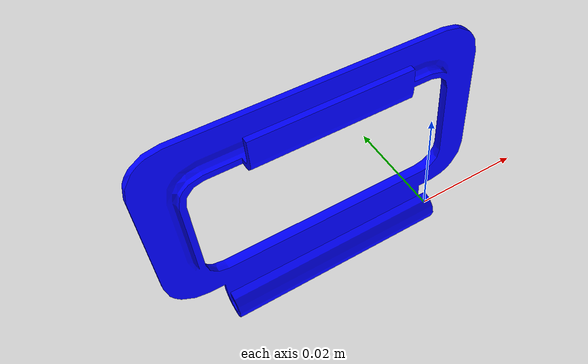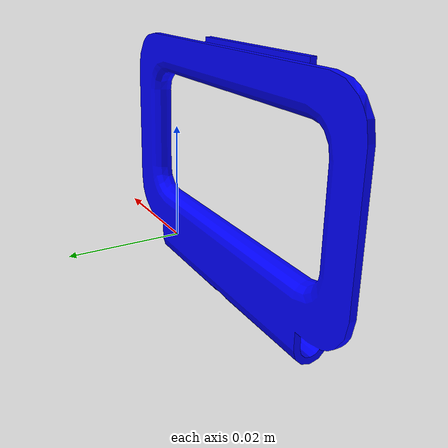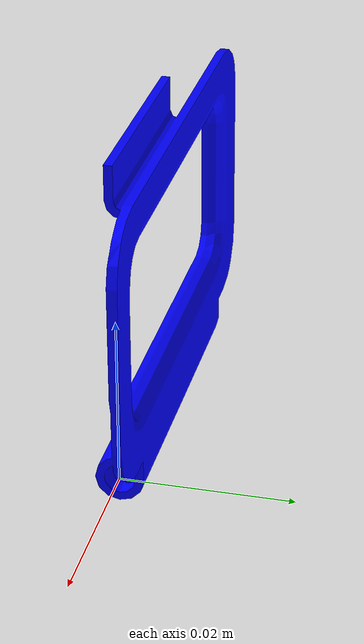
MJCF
<mujoco model="recessed_latch_handle">
  <default>
    <default class="visual">
      <geom group="2" type="mesh" contype="0" conaffinity="0"/>
    </default>
    <default class="collision">
      <geom group="3" type="mesh"/>
    </default>
  </default>
  <asset>
    <material name="mtl_recessed_latch_handle" specular="0.20000000000000004" shininess="1.0" rgba="0.00000000 0.00000000 1.00000000 1.0"/>
    <mesh file="recessed_latch_handle.obj"/>
  </asset>
  <worldbody>
    <body name="recessed_latch_handle">
      <geom material="mtl_recessed_latch_handle" mesh="recessed_latch_handle" class="visual"/>
      <geom mesh="recessed_latch_handle" class="collision"/>
    </body>
  </worldbody>
</mujoco>
